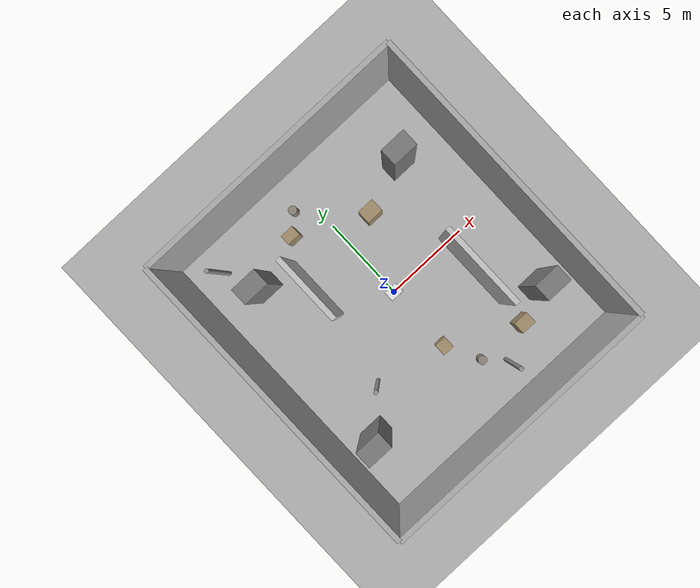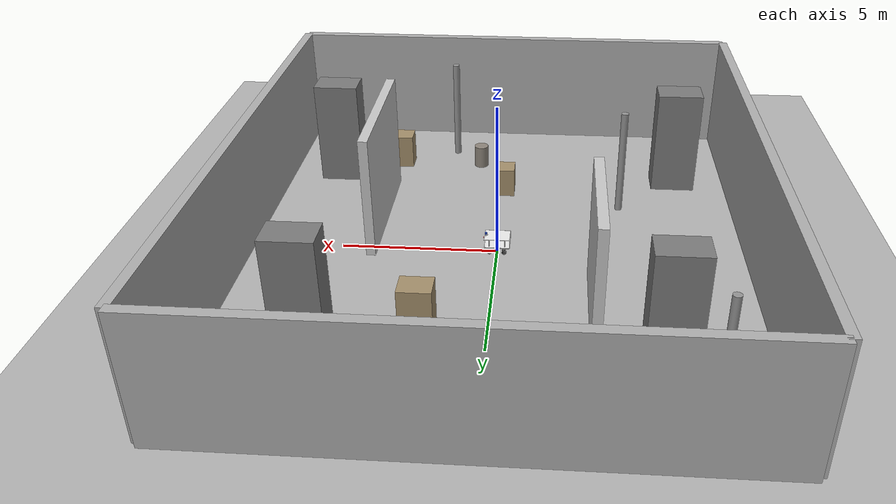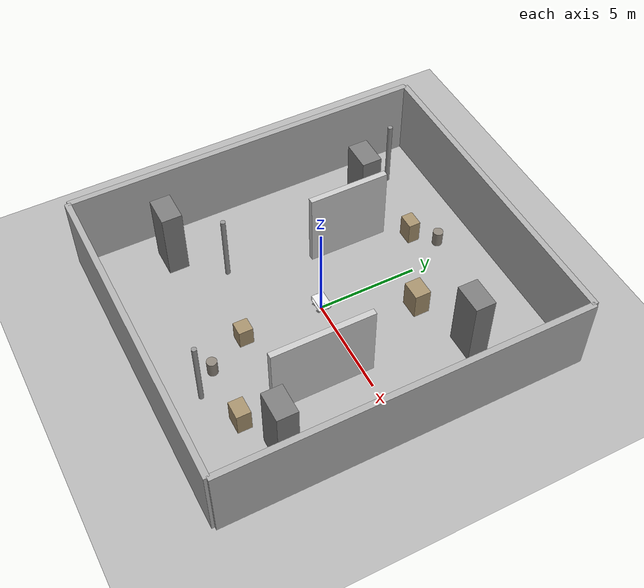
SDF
<?xml version="1.0" ?>
<sdf version="1.6">
  <world name="phase2b_factory">
    <gravity>0 0 -9.8</gravity>

    <!-- Fortress system plugins (explicit load for sensor reliability) -->
    <plugin filename="libignition-gazebo6-physics-system.so"
            name="ignition::gazebo::systems::Physics"/>
    <plugin filename="libignition-gazebo6-scene-broadcaster-system.so"
            name="ignition::gazebo::systems::SceneBroadcaster"/>
    <plugin filename="libignition-gazebo6-sensors-system.so"
            name="ignition::gazebo::systems::Sensors">
      <render_engine>ogre2</render_engine>
    </plugin>

    <scene>
      <ambient>0.65 0.65 0.65 1</ambient>
      <background>0.85 0.85 0.85 1</background>
      <shadows>true</shadows>
    </scene>

    <light type="directional" name="sun">
      <cast_shadows>true</cast_shadows>
      <pose>0 0 10 0 0 0</pose>
      <diffuse>0.9 0.9 0.9 1</diffuse>
      <specular>0.2 0.2 0.2 1</specular>
      <direction>-0.5 0.1 -0.9</direction>
    </light>

    <!-- Ground -->
    <model name="ground_plane">
      <static>true</static>
      <link name="link">
        <collision name="collision">
          <geometry><plane><normal>0 0 1</normal><size>80 80</size></plane></geometry>
          <surface><friction><ode><mu>1.5</mu><mu2>1.5</mu2></ode></friction></surface>
        </collision>
        <visual name="visual">
          <geometry><plane><normal>0 0 1</normal><size>80 80</size></plane></geometry>
          <material>
            <ambient>0.55 0.55 0.55 1</ambient>
            <diffuse>0.70 0.70 0.70 1</diffuse>
            <specular>0.05 0.05 0.05 1</specular>
          </material>
        </visual>
      </link>
    </model>

    <!-- ====== 外围墙壁 ====== -->
    <model name="wall_north"><static>true</static><pose>8 0 2 0 0 0</pose><link name="link">
      <collision name="c"><geometry><box><size>0.3 18 4</size></box></geometry></collision>
      <visual name="v"><geometry><box><size>0.3 18 4</size></box></geometry>
      <material><ambient>0.68 0.68 0.68 1</ambient><diffuse>0.68 0.68 0.68 1</diffuse><specular>0.15 0.15 0.15 1</specular></material></visual></link></model>

    <model name="wall_south"><static>true</static><pose>-8 0 2 0 0 0</pose><link name="link">
      <collision name="c"><geometry><box><size>0.3 18 4</size></box></geometry></collision>
      <visual name="v"><geometry><box><size>0.3 18 4</size></box></geometry>
      <material><ambient>0.68 0.68 0.68 1</ambient><diffuse>0.68 0.68 0.68 1</diffuse><specular>0.15 0.15 0.15 1</specular></material></visual></link></model>

    <model name="wall_east"><static>true</static><pose>0 9 2 0 0 0</pose><link name="link">
      <collision name="c"><geometry><box><size>16 0.3 4</size></box></geometry></collision>
      <visual name="v"><geometry><box><size>16 0.3 4</size></box></geometry>
      <material><ambient>0.68 0.68 0.68 1</ambient><diffuse>0.68 0.68 0.68 1</diffuse><specular>0.15 0.15 0.15 1</specular></material></visual></link></model>

    <model name="wall_west"><static>true</static><pose>0 -9 2 0 0 0</pose><link name="link">
      <collision name="c"><geometry><box><size>16 0.3 4</size></box></geometry></collision>
      <visual name="v"><geometry><box><size>16 0.3 4</size></box></geometry>
      <material><ambient>0.68 0.68 0.68 1</ambient><diffuse>0.68 0.68 0.68 1</diffuse><specular>0.15 0.15 0.15 1</specular></material></visual></link></model>

    <!-- ====== 内部隔断墙 ====== -->
    <model name="divider_1"><static>true</static><pose>4 -2 2 0 0 0</pose><link name="link">
      <collision name="c"><geometry><box><size>0.3 5 4</size></box></geometry></collision>
      <visual name="v"><geometry><box><size>0.3 5 4</size></box></geometry>
      <material><ambient>0.78 0.78 0.78 1</ambient><diffuse>0.78 0.78 0.78 1</diffuse><specular>0.12 0.12 0.12 1</specular></material></visual></link></model>

    <model name="divider_2"><static>true</static><pose>-3 3 2 0 0 0</pose><link name="link">
      <collision name="c"><geometry><box><size>0.3 4 4</size></box></geometry></collision>
      <visual name="v"><geometry><box><size>0.3 4 4</size></box></geometry>
      <material><ambient>0.78 0.78 0.78 1</ambient><diffuse>0.78 0.78 0.78 1</diffuse><specular>0.12 0.12 0.12 1</specular></material></visual></link></model>

    <!-- ====== 高货架 (4个) ====== -->
    <model name="rack_A1"><static>true</static><pose>5 5 1.8 0 0 0</pose><link name="link">
      <collision name="c"><geometry><box><size>1.5 1.0 3.6</size></box></geometry></collision>
      <visual name="v"><geometry><box><size>1.5 1.0 3.6</size></box></geometry>
      <material><ambient>0.48 0.48 0.48 1</ambient><diffuse>0.48 0.48 0.48 1</diffuse><specular>0.12 0.12 0.12 1</specular></material></visual></link></model>

    <model name="rack_A2"><static>true</static><pose>6 -5 1.8 0 0 0</pose><link name="link">
      <collision name="c"><geometry><box><size>1.5 1.0 3.6</size></box></geometry></collision>
      <visual name="v"><geometry><box><size>1.5 1.0 3.6</size></box></geometry>
      <material><ambient>0.48 0.48 0.48 1</ambient><diffuse>0.48 0.48 0.48 1</diffuse><specular>0.12 0.12 0.12 1</specular></material></visual></link></model>

    <model name="rack_B1"><static>true</static><pose>-5 5 1.8 0 0 0</pose><link name="link">
      <collision name="c"><geometry><box><size>1.5 1.0 3.6</size></box></geometry></collision>
      <visual name="v"><geometry><box><size>1.5 1.0 3.6</size></box></geometry>
      <material><ambient>0.48 0.48 0.48 1</ambient><diffuse>0.48 0.48 0.48 1</diffuse><specular>0.12 0.12 0.12 1</specular></material></visual></link></model>

    <model name="rack_B2"><static>true</static><pose>-6 -5 1.8 0 0 0</pose><link name="link">
      <collision name="c"><geometry><box><size>1.5 1.0 3.6</size></box></geometry></collision>
      <visual name="v"><geometry><box><size>1.5 1.0 3.6</size></box></geometry>
      <material><ambient>0.48 0.48 0.48 1</ambient><diffuse>0.48 0.48 0.48 1</diffuse><specular>0.12 0.12 0.12 1</specular></material></visual></link></model>

    <!-- ====== 中型货箱 (4个) ====== -->
    <model name="box_1"><static>true</static><pose>2 4 0.7 0 0 0</pose><link name="link">
      <collision name="c"><geometry><box><size>1.0 0.8 1.4</size></box></geometry></collision>
      <visual name="v"><geometry><box><size>1.0 0.8 1.4</size></box></geometry>
      <material><ambient>0.64 0.56 0.42 1</ambient><diffuse>0.64 0.56 0.42 1</diffuse><specular>0.10 0.10 0.10 1</specular></material></visual></link></model>

    <model name="box_2"><static>true</static><pose>-2 6 0.6 0 0 0</pose><link name="link">
      <collision name="c"><geometry><box><size>0.8 0.6 1.2</size></box></geometry></collision>
      <visual name="v"><geometry><box><size>0.8 0.6 1.2</size></box></geometry>
      <material><ambient>0.64 0.56 0.42 1</ambient><diffuse>0.64 0.56 0.42 1</diffuse><specular>0.10 0.10 0.10 1</specular></material></visual></link></model>

    <model name="box_3"><static>true</static><pose>0 -4 0.5 0 0 0</pose><link name="link">
      <collision name="c"><geometry><box><size>0.7 0.7 1.0</size></box></geometry></collision>
      <visual name="v"><geometry><box><size>0.7 0.7 1.0</size></box></geometry>
      <material><ambient>0.64 0.56 0.42 1</ambient><diffuse>0.64 0.56 0.42 1</diffuse><specular>0.10 0.10 0.10 1</specular></material></visual></link></model>

    <model name="box_4"><static>true</static><pose>4 -6 0.6 0 0 0</pose><link name="link">
      <collision name="c"><geometry><box><size>0.9 0.7 1.2</size></box></geometry></collision>
      <visual name="v"><geometry><box><size>0.9 0.7 1.2</size></box></geometry>
      <material><ambient>0.64 0.56 0.42 1</ambient><diffuse>0.64 0.56 0.42 1</diffuse><specular>0.10 0.10 0.10 1</specular></material></visual></link></model>

    <!-- ====== 脚手架立柱 (3个) ====== -->
    <model name="pillar_1"><static>true</static><pose>-4 -3 1.8 0 0 0</pose><link name="link">
      <collision name="c"><geometry><cylinder><radius>0.12</radius><length>3.6</length></cylinder></geometry></collision>
      <visual name="v"><geometry><cylinder><radius>0.12</radius><length>3.6</length></cylinder></geometry>
      <material><ambient>0.58 0.58 0.58 1</ambient><diffuse>0.58 0.58 0.58 1</diffuse><specular>0.15 0.15 0.15 1</specular></material></visual></link></model>

    <model name="pillar_2"><static>true</static><pose>2 -7 1.8 0 0 0</pose><link name="link">
      <collision name="c"><geometry><cylinder><radius>0.12</radius><length>3.6</length></cylinder></geometry></collision>
      <visual name="v"><geometry><cylinder><radius>0.12</radius><length>3.6</length></cylinder></geometry>
      <material><ambient>0.58 0.58 0.58 1</ambient><diffuse>0.58 0.58 0.58 1</diffuse><specular>0.15 0.15 0.15 1</specular></material></visual></link></model>

    <model name="pillar_3"><static>true</static><pose>-6 7 1.8 0 0 0</pose><link name="link">
      <collision name="c"><geometry><cylinder><radius>0.12</radius><length>3.6</length></cylinder></geometry></collision>
      <visual name="v"><geometry><cylinder><radius>0.12</radius><length>3.6</length></cylinder></geometry>
      <material><ambient>0.58 0.58 0.58 1</ambient><diffuse>0.58 0.58 0.58 1</diffuse><specular>0.15 0.15 0.15 1</specular></material></visual></link></model>

    <!-- ====== 小障碍桶 (2个) ====== -->
    <model name="barrel_1"><static>true</static><pose>1 -6 0.4 0 0 0</pose><link name="link">
      <collision name="c"><geometry><cylinder><radius>0.25</radius><length>0.8</length></cylinder></geometry></collision>
      <visual name="v"><geometry><cylinder><radius>0.25</radius><length>0.8</length></cylinder></geometry>
      <material><ambient>0.55 0.52 0.48 1</ambient><diffuse>0.55 0.52 0.48 1</diffuse><specular>0.12 0.12 0.12 1</specular></material></visual></link></model>

    <model name="barrel_2"><static>true</static><pose>-1 7 0.4 0 0 0</pose><link name="link">
      <collision name="c"><geometry><cylinder><radius>0.25</radius><length>0.8</length></cylinder></geometry></collision>
      <visual name="v"><geometry><cylinder><radius>0.25</radius><length>0.8</length></cylinder></geometry>
      <material><ambient>0.55 0.52 0.48 1</ambient><diffuse>0.55 0.52 0.48 1</diffuse><specular>0.12 0.12 0.12 1</specular></material></visual></link></model>

    <!-- ====== Inspection Bot (Gazebo SDF, with lidar sensor) ====== -->
    <include>
      <uri>model://inspection_bot</uri>
      <pose>0 0 0.3 0 0 0</pose>
    </include>

    <!-- ====== 静态测试 Lidar (调试用, 不占 /scan) ====== -->
    <model name="test_lidar_static">
      <static>true</static>
      <pose>0 0 0.5 0 0 0</pose>
      <link name="link">
        <sensor name="test_lidar_sensor" type="gpu_lidar">
          <always_on>1</always_on>
          <visualize>true</visualize>
          <update_rate>10</update_rate>
          <topic>/debug/static_scan</topic>
          <lidar>
            <scan>
              <horizontal>
                <samples>360</samples>
                <resolution>1</resolution>
                <min_angle>-3.14159</min_angle>
                <max_angle>3.14159</max_angle>
              </horizontal>
              <vertical>
                <samples>1</samples>
                <min_angle>0</min_angle>
                <max_angle>0</max_angle>
              </vertical>
            </scan>
            <range>
              <min>0.1</min>
              <max>10.0</max>
              <resolution>0.01</resolution>
            </range>
          </lidar>
        </sensor>
      </link>
    </model>

  </world>
</sdf>

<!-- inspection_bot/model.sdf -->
<sdf version="1.9">
  <model name="inspection_bot">
    <link name="base_link">
      <inertial>
        <pose>-0.05165080332409973 -1.650415512465452e-05 -0.02308814404432133 0 0 0</pose>
        <mass>7.2199999999999998</mass>
        <inertia>
          <ixx>0.31320811063904169</ixx>
          <ixy>4.9172661324099557e-05</ixy>
          <ixz>-0.067711619664764536</ixz>
          <iyy>0.43423333109713758</iyy>
          <iyz>4.4758658044323012e-05</iyz>
          <izz>0.65877228650991904</izz>
        </inertia>
      </inertial>
      <collision name="base_link_collision">
        <pose>0 0 0 0 0 0</pose>
        <geometry>
          <box>
            <size>0.806 0.607 0.03</size>
          </box>
        </geometry>
        <surface>
          <contact>
            <ode />
          </contact>
          <friction>
            <ode />
          </friction>
        </surface>
      </collision>
      <collision name="base_link_fixed_joint_lump__camera_link_collision_1">
        <pose>0.4056 0 0.21 0 0 0</pose>
        <geometry>
          <box>
            <size>0.06 0.035 0.035</size>
          </box>
        </geometry>
        <surface>
          <contact>
            <ode />
          </contact>
          <friction>
            <ode />
          </friction>
        </surface>
      </collision>
      <collision name="base_link_fixed_joint_lump__lidar_link_collision_2">
        <pose>0.36101 -0.000993 0.35253 0 0 0</pose>
        <geometry>
          <cylinder>
            <length>0.059999999999999998</length>
            <radius>0.035000000000000003</radius>
          </cylinder>
        </geometry>
        <surface>
          <contact>
            <ode />
          </contact>
          <friction>
            <ode />
          </friction>
        </surface>
      </collision>
      <collision name="base_link_fixed_joint_lump__rl_steering_link_collision_3">
        <pose>-0.2284 0.238 -0.11 0 0 0</pose>
        <geometry>
          <cylinder>
            <length>0.080000000000000002</length>
            <radius>0.029999999999999999</radius>
          </cylinder>
        </geometry>
        <surface>
          <contact>
            <ode />
          </contact>
          <friction>
            <ode />
          </friction>
        </surface>
      </collision>
      <collision name="base_link_fixed_joint_lump__rr_steering_link_collision_4">
        <pose>-0.2284 -0.238 -0.11 0 0 0</pose>
        <geometry>
          <cylinder>
            <length>0.080000000000000002</length>
            <radius>0.029999999999999999</radius>
          </cylinder>
        </geometry>
        <surface>
          <contact>
            <ode />
          </contact>
          <friction>
            <ode />
          </friction>
        </surface>
      </collision>
      <visual name="base_link_visual">
        <pose>0 0 0 0 0 0</pose>
        <geometry>
          <box>
            <size>0.806 0.607 0.03</size>
          </box>
        </geometry>
        <material>
          <script>
            <name>Gazebo/White</name>
            <uri>file://media/materials/scripts/gazebo.material</uri>
          </script>
          <diffuse>0.9375 0.9375 0.9375 1</diffuse>
          <ambient>0.9375 0.9375 0.9375 1</ambient>
        </material>
      </visual>
      <visual name="base_link_visual_1">
        <pose>0 0 0.3 0 0 0</pose>
        <geometry>
          <box>
            <size>0.806 0.607 0.008</size>
          </box>
        </geometry>
        <material>
          <script>
            <name>Gazebo/White</name>
            <uri>file://media/materials/scripts/gazebo.material</uri>
          </script>
          <diffuse>0 0 0 1</diffuse>
          <ambient>0 0 0 1</ambient>
        </material>
      </visual>
      <visual name="base_link_visual_2">
        <pose>0 0.3035 0.015 0 0 0</pose>
        <geometry>
          <box>
            <size>0.806 0.012 0.012</size>
          </box>
        </geometry>
        <material>
          <script>
            <name>Gazebo/White</name>
            <uri>file://media/materials/scripts/gazebo.material</uri>
          </script>
          <diffuse>0 0 0 1</diffuse>
          <ambient>0 0 0 1</ambient>
        </material>
      </visual>
      <visual name="base_link_visual_3">
        <pose>0 -0.3035 0.015 0 0 0</pose>
        <geometry>
          <box>
            <size>0.806 0.012 0.012</size>
          </box>
        </geometry>
        <material>
          <script>
            <name>Gazebo/White</name>
            <uri>file://media/materials/scripts/gazebo.material</uri>
          </script>
          <diffuse>0 0 0 1</diffuse>
          <ambient>0 0 0 1</ambient>
        </material>
      </visual>
      <visual name="base_link_visual_4">
        <pose>0.403 0 0.015 0 0 0</pose>
        <geometry>
          <box>
            <size>0.012 0.607 0.012</size>
          </box>
        </geometry>
        <material>
          <script>
            <name>Gazebo/White</name>
            <uri>file://media/materials/scripts/gazebo.material</uri>
          </script>
          <diffuse>0 0 0 1</diffuse>
          <ambient>0 0 0 1</ambient>
        </material>
      </visual>
      <visual name="base_link_visual_5">
        <pose>-0.403 0 0.015 0 0 0</pose>
        <geometry>
          <box>
            <size>0.012 0.607 0.012</size>
          </box>
        </geometry>
        <material>
          <script>
            <name>Gazebo/White</name>
            <uri>file://media/materials/scripts/gazebo.material</uri>
          </script>
          <diffuse>0 0 0 1</diffuse>
          <ambient>0 0 0 1</ambient>
        </material>
      </visual>
      <visual name="base_link_visual_6">
        <pose>0 0.3035 0.3 0 0 0</pose>
        <geometry>
          <box>
            <size>0.806 0.012 0.012</size>
          </box>
        </geometry>
        <material>
          <script>
            <name>Gazebo/White</name>
            <uri>file://media/materials/scripts/gazebo.material</uri>
          </script>
          <diffuse>0 0 0 1</diffuse>
          <ambient>0 0 0 1</ambient>
        </material>
      </visual>
      <visual name="base_link_visual_7">
        <pose>0 -0.3035 0.3 0 0 0</pose>
        <geometry>
          <box>
            <size>0.806 0.012 0.012</size>
          </box>
        </geometry>
        <material>
          <script>
            <name>Gazebo/White</name>
            <uri>file://media/materials/scripts/gazebo.material</uri>
          </script>
          <diffuse>0 0 0 1</diffuse>
          <ambient>0 0 0 1</ambient>
        </material>
      </visual>
      <visual name="base_link_visual_8">
        <pose>0.403 0 0.3 0 0 0</pose>
        <geometry>
          <box>
            <size>0.012 0.607 0.012</size>
          </box>
        </geometry>
        <material>
          <script>
            <name>Gazebo/White</name>
            <uri>file://media/materials/scripts/gazebo.material</uri>
          </script>
          <diffuse>0 0 0 1</diffuse>
          <ambient>0 0 0 1</ambient>
        </material>
      </visual>
      <visual name="base_link_visual_9">
        <pose>-0.403 0 0.3 0 0 0</pose>
        <geometry>
          <box>
            <size>0.012 0.607 0.012</size>
          </box>
        </geometry>
        <material>
          <script>
            <name>Gazebo/White</name>
            <uri>file://media/materials/scripts/gazebo.material</uri>
          </script>
          <diffuse>0 0 0 1</diffuse>
          <ambient>0 0 0 1</ambient>
        </material>
      </visual>
      <visual name="base_link_visual_10">
        <pose>0.403 0.3035 0.15 0 0 0</pose>
        <geometry>
          <box>
            <size>0.012 0.012 0.3</size>
          </box>
        </geometry>
        <material>
          <script>
            <name>Gazebo/White</name>
            <uri>file://media/materials/scripts/gazebo.material</uri>
          </script>
          <diffuse>0 0 0 1</diffuse>
          <ambient>0 0 0 1</ambient>
        </material>
      </visual>
      <visual name="base_link_visual_11">
        <pose>0.403 -0.3035 0.15 0 0 0</pose>
        <geometry>
          <box>
            <size>0.012 0.012 0.3</size>
          </box>
        </geometry>
        <material>
          <script>
            <name>Gazebo/White</name>
            <uri>file://media/materials/scripts/gazebo.material</uri>
          </script>
          <diffuse>0 0 0 1</diffuse>
          <ambient>0 0 0 1</ambient>
        </material>
      </visual>
      <visual name="base_link_visual_12">
        <pose>-0.403 0.3035 0.15 0 0 0</pose>
        <geometry>
          <box>
            <size>0.012 0.012 0.3</size>
          </box>
        </geometry>
        <material>
          <script>
            <name>Gazebo/White</name>
            <uri>file://media/materials/scripts/gazebo.material</uri>
          </script>
          <diffuse>0 0 0 1</diffuse>
          <ambient>0 0 0 1</ambient>
        </material>
      </visual>
      <visual name="base_link_visual_13">
        <pose>-0.403 -0.3035 0.15 0 0 0</pose>
        <geometry>
          <box>
            <size>0.012 0.012 0.3</size>
          </box>
        </geometry>
        <material>
          <script>
            <name>Gazebo/White</name>
            <uri>file://media/materials/scripts/gazebo.material</uri>
          </script>
          <diffuse>0 0 0 1</diffuse>
          <ambient>0 0 0 1</ambient>
        </material>
      </visual>
      <visual name="base_link_visual_14">
        <pose>0.25 0.2 0.15 0 0 0</pose>
        <geometry>
          <cylinder>
            <length>0.29999999999999999</length>
            <radius>0.017999999999999999</radius>
          </cylinder>
        </geometry>
        <material>
          <script>
            <name>Gazebo/White</name>
            <uri>file://media/materials/scripts/gazebo.material</uri>
          </script>
          <diffuse>0 0 0 1</diffuse>
          <ambient>0 0 0 1</ambient>
        </material>
      </visual>
      <visual name="base_link_visual_15">
        <pose>0.25 -0.2 0.15 0 0 0</pose>
        <geometry>
          <cylinder>
            <length>0.29999999999999999</length>
            <radius>0.017999999999999999</radius>
          </cylinder>
        </geometry>
        <material>
          <script>
            <name>Gazebo/White</name>
            <uri>file://media/materials/scripts/gazebo.material</uri>
          </script>
          <diffuse>0 0 0 1</diffuse>
          <ambient>0 0 0 1</ambient>
        </material>
      </visual>
      <visual name="base_link_visual_16">
        <pose>-0.25 0.2 0.15 0 0 0</pose>
        <geometry>
          <cylinder>
            <length>0.29999999999999999</length>
            <radius>0.017999999999999999</radius>
          </cylinder>
        </geometry>
        <material>
          <script>
            <name>Gazebo/White</name>
            <uri>file://media/materials/scripts/gazebo.material</uri>
          </script>
          <diffuse>0 0 0 1</diffuse>
          <ambient>0 0 0 1</ambient>
        </material>
      </visual>
      <visual name="base_link_visual_17">
        <pose>-0.25 -0.2 0.15 0 0 0</pose>
        <geometry>
          <cylinder>
            <length>0.29999999999999999</length>
            <radius>0.017999999999999999</radius>
          </cylinder>
        </geometry>
        <material>
          <script>
            <name>Gazebo/White</name>
            <uri>file://media/materials/scripts/gazebo.material</uri>
          </script>
          <diffuse>0 0 0 1</diffuse>
          <ambient>0 0 0 1</ambient>
        </material>
      </visual>
      <visual name="base_link_visual_18">
        <pose>0 0 0.15 0 0 0</pose>
        <geometry>
          <cylinder>
            <length>0.29999999999999999</length>
            <radius>0.017999999999999999</radius>
          </cylinder>
        </geometry>
        <material>
          <script>
            <name>Gazebo/White</name>
            <uri>file://media/materials/scripts/gazebo.material</uri>
          </script>
          <diffuse>0 0 0 1</diffuse>
          <ambient>0 0 0 1</ambient>
        </material>
      </visual>
      <visual name="base_link_visual_19">
        <pose>0.36101 -0.000993 0.325 0 0 0</pose>
        <geometry>
          <cylinder>
            <length>0.050000000000000003</length>
            <radius>0.025000000000000001</radius>
          </cylinder>
        </geometry>
        <material>
          <script>
            <name>Gazebo/White</name>
            <uri>file://media/materials/scripts/gazebo.material</uri>
          </script>
          <diffuse>0 0 0 1</diffuse>
          <ambient>0 0 0 1</ambient>
        </material>
      </visual>
      <visual name="base_link_visual_20">
        <pose>0.36101 -0.000993 0.3 0 0 0</pose>
        <geometry>
          <cylinder>
            <length>0.012</length>
            <radius>0.055</radius>
          </cylinder>
        </geometry>
        <material>
          <script>
            <name>Gazebo/White</name>
            <uri>file://media/materials/scripts/gazebo.material</uri>
          </script>
          <diffuse>0 0 0 1</diffuse>
          <ambient>0 0 0 1</ambient>
        </material>
      </visual>
      <visual name="base_link_visual_21">
        <pose>0.4056 0 0.17 0 0 0</pose>
        <geometry>
          <box>
            <size>0.04 0.04 0.08</size>
          </box>
        </geometry>
        <material>
          <script>
            <name>Gazebo/White</name>
            <uri>file://media/materials/scripts/gazebo.material</uri>
          </script>
          <diffuse>0 0 0 1</diffuse>
          <ambient>0 0 0 1</ambient>
        </material>
      </visual>
      <visual name="base_link_fixed_joint_lump__camera_link_visual_22">
        <pose>0.4056 0 0.21 0 0 0</pose>
        <geometry>
          <box>
            <size>0.06 0.035 0.035</size>
          </box>
        </geometry>
        <material>
          <script>
            <name>Gazebo/Red</name>
            <uri>file://media/materials/scripts/gazebo.material</uri>
          </script>
          <diffuse>0.1875 0.1875 0.1875 1</diffuse>
          <ambient>0.1875 0.1875 0.1875 1</ambient>
        </material>
      </visual>
      <visual name="base_link_fixed_joint_lump__lidar_link_visual_23">
        <pose>0.36101 -0.000993 0.35253 0 0 0</pose>
        <geometry>
          <cylinder>
            <length>0.059999999999999998</length>
            <radius>0.035000000000000003</radius>
          </cylinder>
        </geometry>
        <material>
          <script>
            <name>Gazebo/Blue</name>
            <uri>file://media/materials/scripts/gazebo.material</uri>
          </script>
          <diffuse>0.125 0.375 1 1</diffuse>
          <ambient>0.125 0.375 1 1</ambient>
        </material>
      </visual>
      <visual name="base_link_fixed_joint_lump__rl_steering_link_visual_24">
        <pose>-0.2284 0.238 -0.055 0 0 0</pose>
        <geometry>
          <cylinder>
            <length>0.025000000000000001</length>
            <radius>0.065000000000000002</radius>
          </cylinder>
        </geometry>
        <material>
          <script>
            <name>Gazebo/Grey</name>
            <uri>file://media/materials/scripts/gazebo.material</uri>
          </script>
          <diffuse>0.5625 0.5625 0.5625 1</diffuse>
          <ambient>0.5625 0.5625 0.5625 1</ambient>
        </material>
      </visual>
      <visual name="base_link_fixed_joint_lump__rl_steering_link_visual_25">
        <pose>-0.2284 0.238 -0.11 0 0 0</pose>
        <geometry>
          <cylinder>
            <length>0.11</length>
            <radius>0.028000000000000001</radius>
          </cylinder>
        </geometry>
        <material>
          <script>
            <name>Gazebo/Grey</name>
            <uri>file://media/materials/scripts/gazebo.material</uri>
          </script>
          <diffuse>0 0 0 1</diffuse>
          <ambient>0 0 0 1</ambient>
        </material>
      </visual>
      <visual name="base_link_fixed_joint_lump__rl_steering_link_visual_26">
        <pose>-0.2284 0.303 -0.16 0 0 0</pose>
        <geometry>
          <box>
            <size>0.025 0.012 0.13</size>
          </box>
        </geometry>
        <material>
          <script>
            <name>Gazebo/Grey</name>
            <uri>file://media/materials/scripts/gazebo.material</uri>
          </script>
          <diffuse>0 0 0 1</diffuse>
          <ambient>0 0 0 1</ambient>
        </material>
      </visual>
      <visual name="base_link_fixed_joint_lump__rl_steering_link_visual_27">
        <pose>-0.2284 0.268 -0.16 0 0 0</pose>
        <geometry>
          <box>
            <size>0.025 0.012 0.13</size>
          </box>
        </geometry>
        <material>
          <script>
            <name>Gazebo/Grey</name>
            <uri>file://media/materials/scripts/gazebo.material</uri>
          </script>
          <diffuse>0 0 0 1</diffuse>
          <ambient>0 0 0 1</ambient>
        </material>
      </visual>
      <visual name="base_link_fixed_joint_lump__rl_steering_link_visual_28">
        <pose>-0.2834 0.323 -0.15 0 0 0</pose>
        <geometry>
          <cylinder>
            <length>0.089999999999999997</length>
            <radius>0.012</radius>
          </cylinder>
        </geometry>
        <material>
          <script>
            <name>Gazebo/Grey</name>
            <uri>file://media/materials/scripts/gazebo.material</uri>
          </script>
          <diffuse>0 0 0 1</diffuse>
          <ambient>0 0 0 1</ambient>
        </material>
      </visual>
      <visual name="base_link_fixed_joint_lump__rr_steering_link_visual_29">
        <pose>-0.2284 -0.238 -0.055 0 0 0</pose>
        <geometry>
          <cylinder>
            <length>0.025000000000000001</length>
            <radius>0.065000000000000002</radius>
          </cylinder>
        </geometry>
        <material>
          <script>
            <name>Gazebo/Grey</name>
            <uri>file://media/materials/scripts/gazebo.material</uri>
          </script>
          <diffuse>0.5625 0.5625 0.5625 1</diffuse>
          <ambient>0.5625 0.5625 0.5625 1</ambient>
        </material>
      </visual>
      <visual name="base_link_fixed_joint_lump__rr_steering_link_visual_30">
        <pose>-0.2284 -0.238 -0.11 0 0 0</pose>
        <geometry>
          <cylinder>
            <length>0.11</length>
            <radius>0.028000000000000001</radius>
          </cylinder>
        </geometry>
        <material>
          <script>
            <name>Gazebo/Grey</name>
            <uri>file://media/materials/scripts/gazebo.material</uri>
          </script>
          <diffuse>0 0 0 1</diffuse>
          <ambient>0 0 0 1</ambient>
        </material>
      </visual>
      <visual name="base_link_fixed_joint_lump__rr_steering_link_visual_31">
        <pose>-0.2284 -0.303 -0.16 0 0 0</pose>
        <geometry>
          <box>
            <size>0.025 0.012 0.13</size>
          </box>
        </geometry>
        <material>
          <script>
            <name>Gazebo/Grey</name>
            <uri>file://media/materials/scripts/gazebo.material</uri>
          </script>
          <diffuse>0 0 0 1</diffuse>
          <ambient>0 0 0 1</ambient>
        </material>
      </visual>
      <visual name="base_link_fixed_joint_lump__rr_steering_link_visual_32">
        <pose>-0.2284 -0.268 -0.16 0 0 0</pose>
        <geometry>
          <box>
            <size>0.025 0.012 0.13</size>
          </box>
        </geometry>
        <material>
          <script>
            <name>Gazebo/Grey</name>
            <uri>file://media/materials/scripts/gazebo.material</uri>
          </script>
          <diffuse>0 0 0 1</diffuse>
          <ambient>0 0 0 1</ambient>
        </material>
      </visual>
      <visual name="base_link_fixed_joint_lump__rr_steering_link_visual_33">
        <pose>-0.2834 -0.323 -0.15 0 0 0</pose>
        <geometry>
          <cylinder>
            <length>0.089999999999999997</length>
            <radius>0.012</radius>
          </cylinder>
        </geometry>
        <material>
          <script>
            <name>Gazebo/Grey</name>
            <uri>file://media/materials/scripts/gazebo.material</uri>
          </script>
          <diffuse>0 0 0 1</diffuse>
          <ambient>0 0 0 1</ambient>
        </material>
      </visual>
      <sensor name="phase2b_lidar" type="gpu_lidar">
        <visualize>true</visualize>
        <update_rate>10</update_rate>
        <topic>/scan_raw</topic>
        <lidar>
          <scan>
            <horizontal>
              <samples>720</samples>
              <resolution>1</resolution>
              <min_angle>-3.1415899999999999</min_angle>
              <max_angle>3.1415899999999999</max_angle>
            </horizontal>
            <vertical>
              <samples>1</samples>
              <min_angle>0</min_angle>
              <max_angle>0</max_angle>
            </vertical>
          </scan>
          <range>
            <min>0.10000000000000001</min>
            <max>15</max>
            <resolution>0.01</resolution>
          </range>
        </lidar>
        <pose>0.36101 -0.000993 0.35253 0 -0 0</pose>
        <alwaysOn>1</alwaysOn>
      <frame_id>lidar_link</frame_id></sensor>
    </link>
    <joint name="fl_steering_joint" type="revolute">
      <pose relative_to="base_link">0.2316 0.238 -0.055 0 0 0</pose>
      <parent>base_link</parent>
      <child>fl_steering_link</child>
      <axis>
        <xyz>0 0 1</xyz>
        <limit>
          <lower>-10000000000000000</lower>
          <upper>10000000000000000</upper>
        </limit>
        <dynamics>
          <damping>5</damping>
          <friction>1</friction>
          <spring_reference>0</spring_reference>
          <spring_stiffness>0</spring_stiffness>
        </dynamics>
      </axis>
    </joint>
    <link name="fl_steering_link">
      <pose relative_to="fl_steering_joint">0 0 0 0 0 0</pose>
      <inertial>
        <pose>0 0 -0.06 0 0 0</pose>
        <mass>1</mass>
        <inertia>
          <ixx>0.002</ixx>
          <ixy>0</ixy>
          <ixz>0</ixz>
          <iyy>0.002</iyy>
          <iyz>0</iyz>
          <izz>0.002</izz>
        </inertia>
      </inertial>
      <collision name="fl_steering_link_collision">
        <pose>0 0 -0.055 0 0 0</pose>
        <geometry>
          <cylinder>
            <length>0.080000000000000002</length>
            <radius>0.029999999999999999</radius>
          </cylinder>
        </geometry>
        <surface>
          <contact>
            <ode />
          </contact>
          <friction>
            <ode />
          </friction>
        </surface>
      </collision>
      <visual name="fl_steering_link_visual">
        <pose>0 0 0 0 0 0</pose>
        <geometry>
          <cylinder>
            <length>0.025000000000000001</length>
            <radius>0.065000000000000002</radius>
          </cylinder>
        </geometry>
        <material>
          <script>
            <name>Gazebo/Grey</name>
            <uri>file://media/materials/scripts/gazebo.material</uri>
          </script>
          <diffuse>0.5625 0.5625 0.5625 1</diffuse>
          <ambient>0.5625 0.5625 0.5625 1</ambient>
        </material>
      </visual>
      <visual name="fl_steering_link_visual_1">
        <pose>0 0 -0.055 0 0 0</pose>
        <geometry>
          <cylinder>
            <length>0.11</length>
            <radius>0.028000000000000001</radius>
          </cylinder>
        </geometry>
        <material>
          <script>
            <name>Gazebo/Grey</name>
            <uri>file://media/materials/scripts/gazebo.material</uri>
          </script>
          <diffuse>0 0 0 1</diffuse>
          <ambient>0 0 0 1</ambient>
        </material>
      </visual>
      <visual name="fl_steering_link_visual_2">
        <pose>0 0.065 -0.105 0 0 0</pose>
        <geometry>
          <box>
            <size>0.025 0.012 0.13</size>
          </box>
        </geometry>
        <material>
          <script>
            <name>Gazebo/Grey</name>
            <uri>file://media/materials/scripts/gazebo.material</uri>
          </script>
          <diffuse>0 0 0 1</diffuse>
          <ambient>0 0 0 1</ambient>
        </material>
      </visual>
      <visual name="fl_steering_link_visual_3">
        <pose>0 0.03 -0.105 0 0 0</pose>
        <geometry>
          <box>
            <size>0.025 0.012 0.13</size>
          </box>
        </geometry>
        <material>
          <script>
            <name>Gazebo/Grey</name>
            <uri>file://media/materials/scripts/gazebo.material</uri>
          </script>
          <diffuse>0 0 0 1</diffuse>
          <ambient>0 0 0 1</ambient>
        </material>
      </visual>
      <visual name="fl_steering_link_visual_4">
        <pose>-0.055 0.08500000000000001 -0.095 0 0 0</pose>
        <geometry>
          <cylinder>
            <length>0.089999999999999997</length>
            <radius>0.012</radius>
          </cylinder>
        </geometry>
        <material>
          <script>
            <name>Gazebo/Grey</name>
            <uri>file://media/materials/scripts/gazebo.material</uri>
          </script>
          <diffuse>0 0 0 1</diffuse>
          <ambient>0 0 0 1</ambient>
        </material>
      </visual>
    </link>
    <joint name="fl_wheel_joint" type="revolute">
      <pose relative_to="fl_steering_link">0 0 -0.124 0 0 0</pose>
      <parent>fl_steering_link</parent>
      <child>fl_wheel_link</child>
      <axis>
        <xyz>0 1 0</xyz>
        <limit>
          <lower>-10000000000000000</lower>
          <upper>10000000000000000</upper>
        </limit>
        <dynamics>
          <damping>0.10000000000000001</damping>
          <friction>0.02</friction>
          <spring_reference>0</spring_reference>
          <spring_stiffness>0</spring_stiffness>
        </dynamics>
      </axis>
    </joint>
    <link name="fl_wheel_link">
      <pose relative_to="fl_wheel_joint">0 0 0 0 0 0</pose>
      <inertial>
        <pose>0 0 0 0 0 0</pose>
        <mass>0.80000000000000004</mass>
        <inertia>
          <ixx>0.002</ixx>
          <ixy>0</ixy>
          <ixz>0</ixz>
          <iyy>0.002</iyy>
          <iyz>0</iyz>
          <izz>0.002</izz>
        </inertia>
      </inertial>
      <collision name="fl_wheel_link_collision">
        <pose>0 0 0 -1.5708 0 0</pose>
        <geometry>
          <cylinder>
            <length>0.040000000000000001</length>
            <radius>0.075999999999999998</radius>
          </cylinder>
        </geometry>
        <surface>
          <contact>
            <ode />
          </contact>
          <friction>
            <ode>
              <mu>1.5</mu>
              <mu2>1.5</mu2>
            </ode>
          </friction>
        </surface>
      </collision>
      <visual name="fl_wheel_link_visual">
        <pose>0 0 0 -1.5708 0 0</pose>
        <geometry>
          <cylinder>
            <length>0.040000000000000001</length>
            <radius>0.075999999999999998</radius>
          </cylinder>
        </geometry>
        <material>
          <script>
            <name>Gazebo/FlatBlack</name>
            <uri>file://media/materials/scripts/gazebo.material</uri>
          </script>
          <diffuse>0.1875 0.1875 0.1875 1</diffuse>
          <ambient>0.1875 0.1875 0.1875 1</ambient>
        </material>
      </visual>
    </link>
    <joint name="fr_steering_joint" type="revolute">
      <pose relative_to="base_link">0.2316 -0.238 -0.055 0 0 0</pose>
      <parent>base_link</parent>
      <child>fr_steering_link</child>
      <axis>
        <xyz>0 0 1</xyz>
        <limit>
          <lower>-10000000000000000</lower>
          <upper>10000000000000000</upper>
        </limit>
        <dynamics>
          <damping>5</damping>
          <friction>1</friction>
          <spring_reference>0</spring_reference>
          <spring_stiffness>0</spring_stiffness>
        </dynamics>
      </axis>
    </joint>
    <link name="fr_steering_link">
      <pose relative_to="fr_steering_joint">0 0 0 0 0 0</pose>
      <inertial>
        <pose>0 0 -0.06 0 0 0</pose>
        <mass>1</mass>
        <inertia>
          <ixx>0.002</ixx>
          <ixy>0</ixy>
          <ixz>0</ixz>
          <iyy>0.002</iyy>
          <iyz>0</iyz>
          <izz>0.002</izz>
        </inertia>
      </inertial>
      <collision name="fr_steering_link_collision">
        <pose>0 0 -0.055 0 0 0</pose>
        <geometry>
          <cylinder>
            <length>0.080000000000000002</length>
            <radius>0.029999999999999999</radius>
          </cylinder>
        </geometry>
        <surface>
          <contact>
            <ode />
          </contact>
          <friction>
            <ode />
          </friction>
        </surface>
      </collision>
      <visual name="fr_steering_link_visual">
        <pose>0 0 0 0 0 0</pose>
        <geometry>
          <cylinder>
            <length>0.025000000000000001</length>
            <radius>0.065000000000000002</radius>
          </cylinder>
        </geometry>
        <material>
          <script>
            <name>Gazebo/Grey</name>
            <uri>file://media/materials/scripts/gazebo.material</uri>
          </script>
          <diffuse>0.5625 0.5625 0.5625 1</diffuse>
          <ambient>0.5625 0.5625 0.5625 1</ambient>
        </material>
      </visual>
      <visual name="fr_steering_link_visual_1">
        <pose>0 0 -0.055 0 0 0</pose>
        <geometry>
          <cylinder>
            <length>0.11</length>
            <radius>0.028000000000000001</radius>
          </cylinder>
        </geometry>
        <material>
          <script>
            <name>Gazebo/Grey</name>
            <uri>file://media/materials/scripts/gazebo.material</uri>
          </script>
          <diffuse>0 0 0 1</diffuse>
          <ambient>0 0 0 1</ambient>
        </material>
      </visual>
      <visual name="fr_steering_link_visual_2">
        <pose>0 -0.065 -0.105 0 0 0</pose>
        <geometry>
          <box>
            <size>0.025 0.012 0.13</size>
          </box>
        </geometry>
        <material>
          <script>
            <name>Gazebo/Grey</name>
            <uri>file://media/materials/scripts/gazebo.material</uri>
          </script>
          <diffuse>0 0 0 1</diffuse>
          <ambient>0 0 0 1</ambient>
        </material>
      </visual>
      <visual name="fr_steering_link_visual_3">
        <pose>0 -0.03 -0.105 0 0 0</pose>
        <geometry>
          <box>
            <size>0.025 0.012 0.13</size>
          </box>
        </geometry>
        <material>
          <script>
            <name>Gazebo/Grey</name>
            <uri>file://media/materials/scripts/gazebo.material</uri>
          </script>
          <diffuse>0 0 0 1</diffuse>
          <ambient>0 0 0 1</ambient>
        </material>
      </visual>
      <visual name="fr_steering_link_visual_4">
        <pose>-0.055 -0.08500000000000001 -0.095 0 0 0</pose>
        <geometry>
          <cylinder>
            <length>0.089999999999999997</length>
            <radius>0.012</radius>
          </cylinder>
        </geometry>
        <material>
          <script>
            <name>Gazebo/Grey</name>
            <uri>file://media/materials/scripts/gazebo.material</uri>
          </script>
          <diffuse>0 0 0 1</diffuse>
          <ambient>0 0 0 1</ambient>
        </material>
      </visual>
    </link>
    <joint name="fr_wheel_joint" type="revolute">
      <pose relative_to="fr_steering_link">0 0 -0.124 0 0 0</pose>
      <parent>fr_steering_link</parent>
      <child>fr_wheel_link</child>
      <axis>
        <xyz>0 1 0</xyz>
        <limit>
          <lower>-10000000000000000</lower>
          <upper>10000000000000000</upper>
        </limit>
        <dynamics>
          <damping>0.10000000000000001</damping>
          <friction>0.02</friction>
          <spring_reference>0</spring_reference>
          <spring_stiffness>0</spring_stiffness>
        </dynamics>
      </axis>
    </joint>
    <link name="fr_wheel_link">
      <pose relative_to="fr_wheel_joint">0 0 0 0 0 0</pose>
      <inertial>
        <pose>0 0 0 0 0 0</pose>
        <mass>0.80000000000000004</mass>
        <inertia>
          <ixx>0.002</ixx>
          <ixy>0</ixy>
          <ixz>0</ixz>
          <iyy>0.002</iyy>
          <iyz>0</iyz>
          <izz>0.002</izz>
        </inertia>
      </inertial>
      <collision name="fr_wheel_link_collision">
        <pose>0 0 0 -1.5708 0 0</pose>
        <geometry>
          <cylinder>
            <length>0.040000000000000001</length>
            <radius>0.075999999999999998</radius>
          </cylinder>
        </geometry>
        <surface>
          <contact>
            <ode />
          </contact>
          <friction>
            <ode>
              <mu>1.5</mu>
              <mu2>1.5</mu2>
            </ode>
          </friction>
        </surface>
      </collision>
      <visual name="fr_wheel_link_visual">
        <pose>0 0 0 -1.5708 0 0</pose>
        <geometry>
          <cylinder>
            <length>0.040000000000000001</length>
            <radius>0.075999999999999998</radius>
          </cylinder>
        </geometry>
        <material>
          <script>
            <name>Gazebo/FlatBlack</name>
            <uri>file://media/materials/scripts/gazebo.material</uri>
          </script>
          <diffuse>0.1875 0.1875 0.1875 1</diffuse>
          <ambient>0.1875 0.1875 0.1875 1</ambient>
        </material>
      </visual>
    </link>
    <joint name="rl_wheel_joint" type="revolute">
      <pose relative_to="base_link">-0.2284 0.238 -0.179 0 0 0</pose>
      <parent>base_link</parent>
      <child>rl_wheel_link</child>
      <axis>
        <xyz>0 1 0</xyz>
        <limit>
          <lower>-10000000000000000</lower>
          <upper>10000000000000000</upper>
        </limit>
        <dynamics>
          <damping>0.10000000000000001</damping>
          <friction>0.02</friction>
          <spring_reference>0</spring_reference>
          <spring_stiffness>0</spring_stiffness>
        </dynamics>
      </axis>
    </joint>
    <link name="rl_wheel_link">
      <pose relative_to="rl_wheel_joint">0 0 0 0 0 0</pose>
      <inertial>
        <pose>0 0 0 0 0 0</pose>
        <mass>0.80000000000000004</mass>
        <inertia>
          <ixx>0.002</ixx>
          <ixy>0</ixy>
          <ixz>0</ixz>
          <iyy>0.002</iyy>
          <iyz>0</iyz>
          <izz>0.002</izz>
        </inertia>
      </inertial>
      <collision name="rl_wheel_link_collision">
        <pose>0 0 0 -1.5708 0 0</pose>
        <geometry>
          <cylinder>
            <length>0.040000000000000001</length>
            <radius>0.075999999999999998</radius>
          </cylinder>
        </geometry>
        <surface>
          <contact>
            <ode />
          </contact>
          <friction>
            <ode>
              <mu>1.5</mu>
              <mu2>1.5</mu2>
            </ode>
          </friction>
        </surface>
      </collision>
      <visual name="rl_wheel_link_visual">
        <pose>0 0 0 -1.5708 0 0</pose>
        <geometry>
          <cylinder>
            <length>0.040000000000000001</length>
            <radius>0.075999999999999998</radius>
          </cylinder>
        </geometry>
        <material>
          <script>
            <name>Gazebo/FlatBlack</name>
            <uri>file://media/materials/scripts/gazebo.material</uri>
          </script>
          <diffuse>0.1875 0.1875 0.1875 1</diffuse>
          <ambient>0.1875 0.1875 0.1875 1</ambient>
        </material>
      </visual>
    </link>
    <joint name="rr_wheel_joint" type="revolute">
      <pose relative_to="base_link">-0.2284 -0.238 -0.179 0 0 0</pose>
      <parent>base_link</parent>
      <child>rr_wheel_link</child>
      <axis>
        <xyz>0 1 0</xyz>
        <limit>
          <lower>-10000000000000000</lower>
          <upper>10000000000000000</upper>
        </limit>
        <dynamics>
          <damping>0.10000000000000001</damping>
          <friction>0.02</friction>
          <spring_reference>0</spring_reference>
          <spring_stiffness>0</spring_stiffness>
        </dynamics>
      </axis>
    </joint>
    <link name="rr_wheel_link">
      <pose relative_to="rr_wheel_joint">0 0 0 0 0 0</pose>
      <inertial>
        <pose>0 0 0 0 0 0</pose>
        <mass>0.80000000000000004</mass>
        <inertia>
          <ixx>0.002</ixx>
          <ixy>0</ixy>
          <ixz>0</ixz>
          <iyy>0.002</iyy>
          <iyz>0</iyz>
          <izz>0.002</izz>
        </inertia>
      </inertial>
      <collision name="rr_wheel_link_collision">
        <pose>0 0 0 -1.5708 0 0</pose>
        <geometry>
          <cylinder>
            <length>0.040000000000000001</length>
            <radius>0.075999999999999998</radius>
          </cylinder>
        </geometry>
        <surface>
          <contact>
            <ode />
          </contact>
          <friction>
            <ode>
              <mu>1.5</mu>
              <mu2>1.5</mu2>
            </ode>
          </friction>
        </surface>
      </collision>
      <visual name="rr_wheel_link_visual">
        <pose>0 0 0 -1.5708 0 0</pose>
        <geometry>
          <cylinder>
            <length>0.040000000000000001</length>
            <radius>0.075999999999999998</radius>
          </cylinder>
        </geometry>
        <material>
          <script>
            <name>Gazebo/FlatBlack</name>
            <uri>file://media/materials/scripts/gazebo.material</uri>
          </script>
          <diffuse>0.1875 0.1875 0.1875 1</diffuse>
          <ambient>0.1875 0.1875 0.1875 1</ambient>
        </material>
      </visual>
    </link>
    <plugin name="gz_ros2_control::GazeboSimROS2ControlPlugin" filename="libgz_ros2_control-system.so">
      <robot_param>robot_description</robot_param>
      <robot_param_node>robot_state_publisher</robot_param_node>
      <parameters>/home/jetson/ros2_ws/install/inspection_bot_description/share/inspection_bot_description/config/controllers.yaml</parameters>
    </plugin>
    <frame name="camera_joint" attached_to="base_link">
      <pose>0.4056 0 0.21 0 -0 0</pose>
    </frame>
    <frame name="camera_link" attached_to="camera_joint" />
    <frame name="lidar_joint" attached_to="base_link">
      <pose>0.36101 -0.000993 0.35253 0 -0 0</pose>
    </frame>
    <frame name="lidar_link" attached_to="lidar_joint" />
    <frame name="rl_steering_joint" attached_to="base_link">
      <pose>-0.2284 0.238 -0.055 0 -0 0</pose>
    </frame>
    <frame name="rl_steering_link" attached_to="rl_steering_joint" />
    <frame name="rr_steering_joint" attached_to="base_link">
      <pose>-0.2284 -0.238 -0.055 0 -0 0</pose>
    </frame>
    <frame name="rr_steering_link" attached_to="rr_steering_joint" />
  </model>
</sdf>
